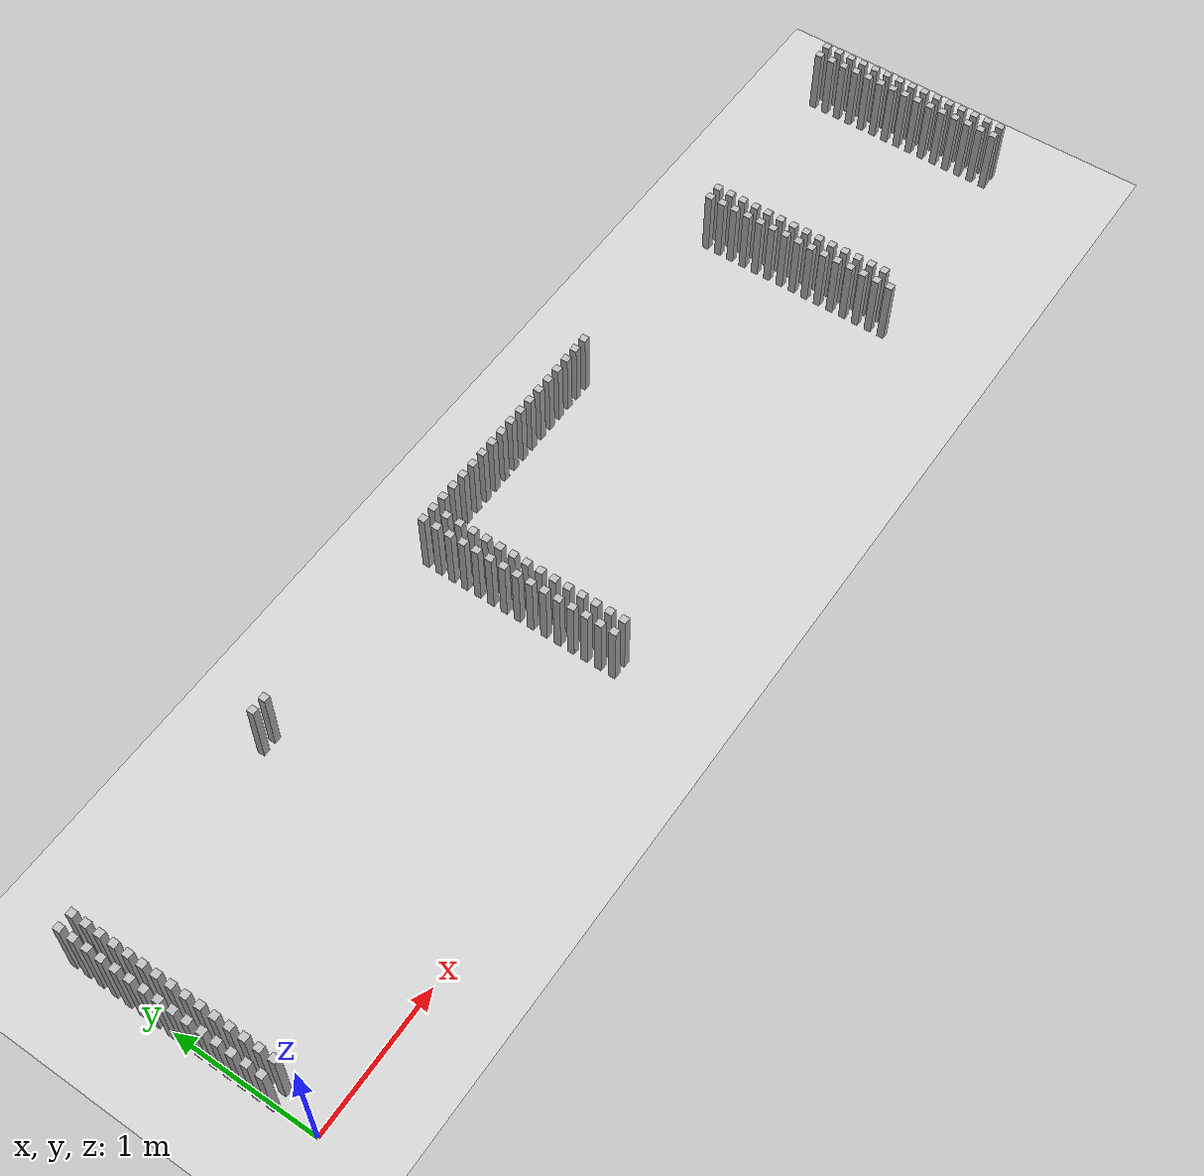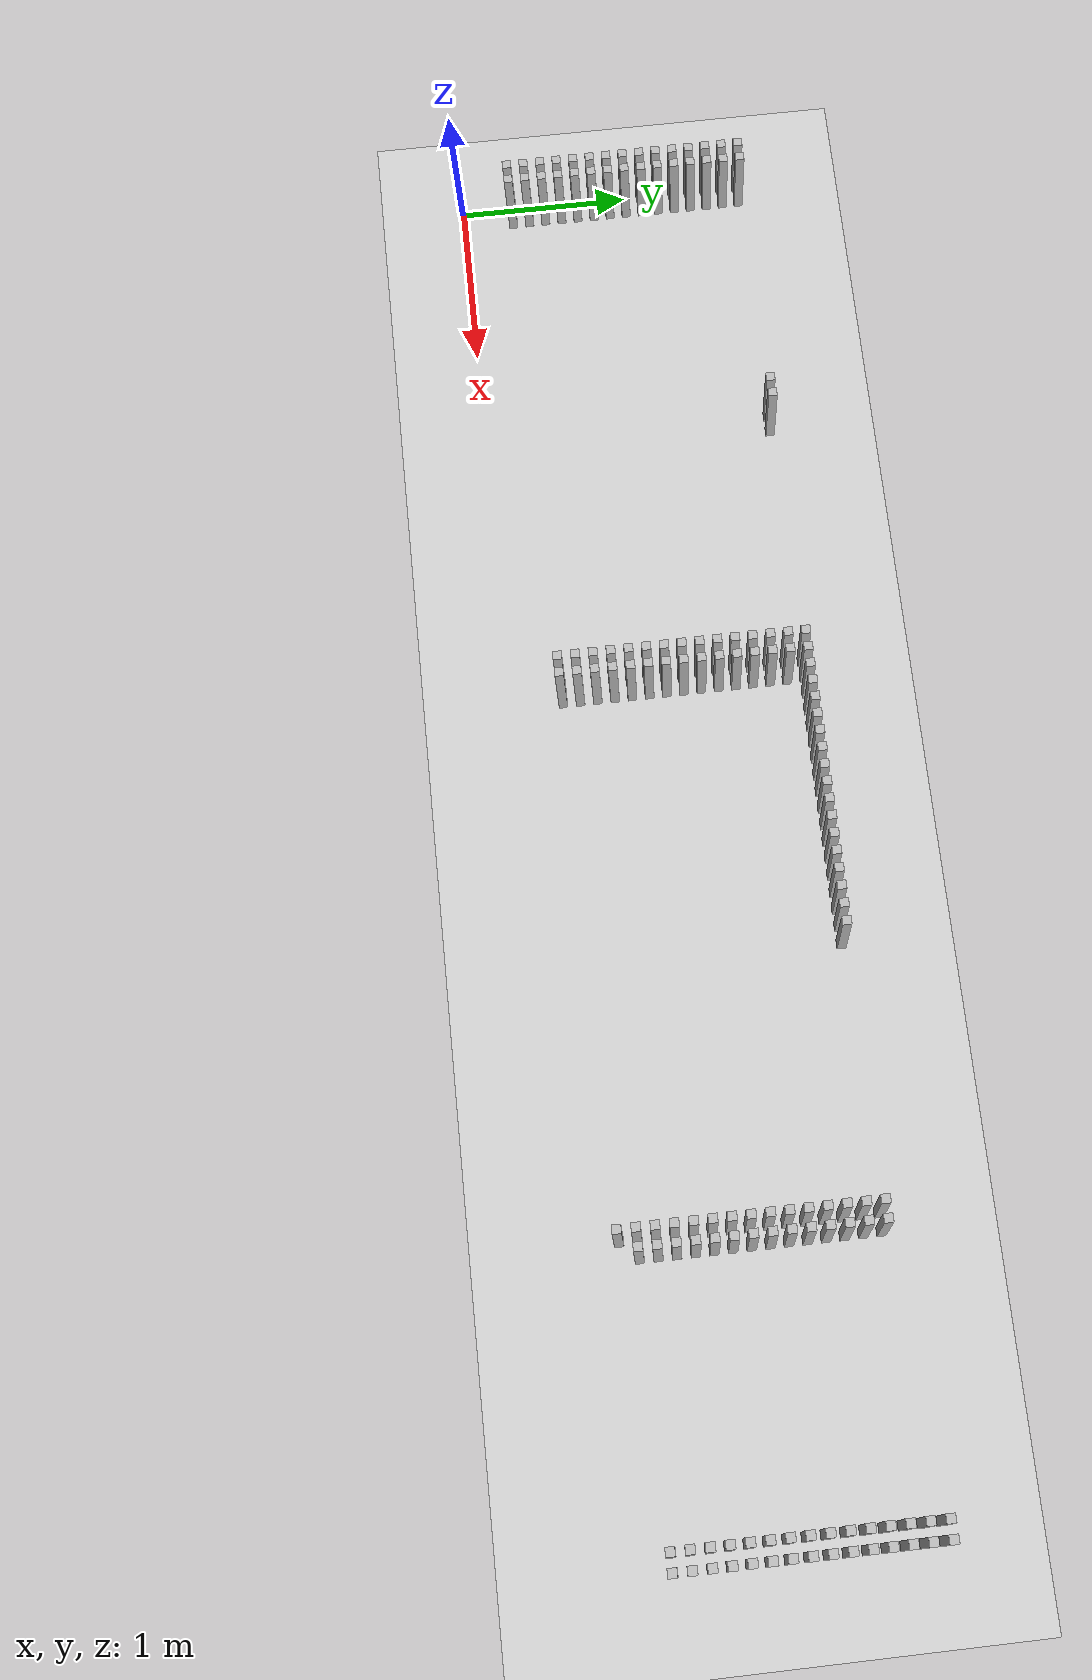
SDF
<sdf version="1.6">
 <world name="default_world">
  <include><uri>model://sun</uri></include>
  <include><uri>model://ground_plane</uri></include>
  <model name="wall_820">
   <static>true</static>
   <link name="link">
    <collision name="collision"><geometry><box><size>0.05 0.05 0.5</size></box></geometry></collision>
    <visual name="visual"><geometry><box><size>0.05 0.05 0.5</size></box></geometry></visual>
    <pose>8.0 1.8 0.25 0 0 0</pose>
   </link>
  </model>
  <model name="wall_821">
   <static>true</static>
   <link name="link">
    <collision name="collision"><geometry><box><size>0.05 0.05 0.5</size></box></geometry></collision>
    <visual name="visual"><geometry><box><size>0.05 0.05 0.5</size></box></geometry></visual>
    <pose>8.1 1.8 0.25 0 0 0</pose>
   </link>
  </model>
  <model name="wall_822">
   <static>true</static>
   <link name="link">
    <collision name="collision"><geometry><box><size>0.05 0.05 0.5</size></box></geometry></collision>
    <visual name="visual"><geometry><box><size>0.05 0.05 0.5</size></box></geometry></visual>
    <pose>0.0 1.7000000000000002 0.25 0 0 0</pose>
   </link>
  </model>
  <model name="wall_823">
   <static>true</static>
   <link name="link">
    <collision name="collision"><geometry><box><size>0.05 0.05 0.5</size></box></geometry></collision>
    <visual name="visual"><geometry><box><size>0.05 0.05 0.5</size></box></geometry></visual>
    <pose>0.1 1.7000000000000002 0.25 0 0 0</pose>
   </link>
  </model>
  <model name="wall_824">
   <static>true</static>
   <link name="link">
    <collision name="collision"><geometry><box><size>0.05 0.05 0.5</size></box></geometry></collision>
    <visual name="visual"><geometry><box><size>0.05 0.05 0.5</size></box></geometry></visual>
    <pose>1.6 1.7000000000000002 0.25 0 0 0</pose>
   </link>
  </model>
  <model name="wall_825">
   <static>true</static>
   <link name="link">
    <collision name="collision"><geometry><box><size>0.05 0.05 0.5</size></box></geometry></collision>
    <visual name="visual"><geometry><box><size>0.05 0.05 0.5</size></box></geometry></visual>
    <pose>1.7000000000000002 1.7000000000000002 0.25 0 0 0</pose>
   </link>
  </model>
  <model name="wall_826">
   <static>true</static>
   <link name="link">
    <collision name="collision"><geometry><box><size>0.05 0.05 0.5</size></box></geometry></collision>
    <visual name="visual"><geometry><box><size>0.05 0.05 0.5</size></box></geometry></visual>
    <pose>3.2 1.7000000000000002 0.25 0 0 0</pose>
   </link>
  </model>
  <model name="wall_827">
   <static>true</static>
   <link name="link">
    <collision name="collision"><geometry><box><size>0.05 0.05 0.5</size></box></geometry></collision>
    <visual name="visual"><geometry><box><size>0.05 0.05 0.5</size></box></geometry></visual>
    <pose>3.3000000000000003 1.7000000000000002 0.25 0 0 0</pose>
   </link>
  </model>
  <model name="wall_828">
   <static>true</static>
   <link name="link">
    <collision name="collision"><geometry><box><size>0.05 0.05 0.5</size></box></geometry></collision>
    <visual name="visual"><geometry><box><size>0.05 0.05 0.5</size></box></geometry></visual>
    <pose>3.4000000000000004 1.7000000000000002 0.25 0 0 0</pose>
   </link>
  </model>
  <model name="wall_829">
   <static>true</static>
   <link name="link">
    <collision name="collision"><geometry><box><size>0.05 0.05 0.5</size></box></geometry></collision>
    <visual name="visual"><geometry><box><size>0.05 0.05 0.5</size></box></geometry></visual>
    <pose>3.5 1.7000000000000002 0.25 0 0 0</pose>
   </link>
  </model>
  <model name="wall_830">
   <static>true</static>
   <link name="link">
    <collision name="collision"><geometry><box><size>0.05 0.05 0.5</size></box></geometry></collision>
    <visual name="visual"><geometry><box><size>0.05 0.05 0.5</size></box></geometry></visual>
    <pose>3.6 1.7000000000000002 0.25 0 0 0</pose>
   </link>
  </model>
  <model name="wall_831">
   <static>true</static>
   <link name="link">
    <collision name="collision"><geometry><box><size>0.05 0.05 0.5</size></box></geometry></collision>
    <visual name="visual"><geometry><box><size>0.05 0.05 0.5</size></box></geometry></visual>
    <pose>3.7 1.7000000000000002 0.25 0 0 0</pose>
   </link>
  </model>
  <model name="wall_832">
   <static>true</static>
   <link name="link">
    <collision name="collision"><geometry><box><size>0.05 0.05 0.5</size></box></geometry></collision>
    <visual name="visual"><geometry><box><size>0.05 0.05 0.5</size></box></geometry></visual>
    <pose>3.8000000000000003 1.7000000000000002 0.25 0 0 0</pose>
   </link>
  </model>
  <model name="wall_833">
   <static>true</static>
   <link name="link">
    <collision name="collision"><geometry><box><size>0.05 0.05 0.5</size></box></geometry></collision>
    <visual name="visual"><geometry><box><size>0.05 0.05 0.5</size></box></geometry></visual>
    <pose>3.9000000000000004 1.7000000000000002 0.25 0 0 0</pose>
   </link>
  </model>
  <model name="wall_834">
   <static>true</static>
   <link name="link">
    <collision name="collision"><geometry><box><size>0.05 0.05 0.5</size></box></geometry></collision>
    <visual name="visual"><geometry><box><size>0.05 0.05 0.5</size></box></geometry></visual>
    <pose>4.0 1.7000000000000002 0.25 0 0 0</pose>
   </link>
  </model>
  <model name="wall_835">
   <static>true</static>
   <link name="link">
    <collision name="collision"><geometry><box><size>0.05 0.05 0.5</size></box></geometry></collision>
    <visual name="visual"><geometry><box><size>0.05 0.05 0.5</size></box></geometry></visual>
    <pose>4.1000000000000005 1.7000000000000002 0.25 0 0 0</pose>
   </link>
  </model>
  <model name="wall_836">
   <static>true</static>
   <link name="link">
    <collision name="collision"><geometry><box><size>0.05 0.05 0.5</size></box></geometry></collision>
    <visual name="visual"><geometry><box><size>0.05 0.05 0.5</size></box></geometry></visual>
    <pose>4.2 1.7000000000000002 0.25 0 0 0</pose>
   </link>
  </model>
  <model name="wall_837">
   <static>true</static>
   <link name="link">
    <collision name="collision"><geometry><box><size>0.05 0.05 0.5</size></box></geometry></collision>
    <visual name="visual"><geometry><box><size>0.05 0.05 0.5</size></box></geometry></visual>
    <pose>4.3 1.7000000000000002 0.25 0 0 0</pose>
   </link>
  </model>
  <model name="wall_838">
   <static>true</static>
   <link name="link">
    <collision name="collision"><geometry><box><size>0.05 0.05 0.5</size></box></geometry></collision>
    <visual name="visual"><geometry><box><size>0.05 0.05 0.5</size></box></geometry></visual>
    <pose>4.4 1.7000000000000002 0.25 0 0 0</pose>
   </link>
  </model>
  <model name="wall_839">
   <static>true</static>
   <link name="link">
    <collision name="collision"><geometry><box><size>0.05 0.05 0.5</size></box></geometry></collision>
    <visual name="visual"><geometry><box><size>0.05 0.05 0.5</size></box></geometry></visual>
    <pose>4.5 1.7000000000000002 0.25 0 0 0</pose>
   </link>
  </model>
  <model name="wall_840">
   <static>true</static>
   <link name="link">
    <collision name="collision"><geometry><box><size>0.05 0.05 0.5</size></box></geometry></collision>
    <visual name="visual"><geometry><box><size>0.05 0.05 0.5</size></box></geometry></visual>
    <pose>4.6000000000000005 1.7000000000000002 0.25 0 0 0</pose>
   </link>
  </model>
  <model name="wall_841">
   <static>true</static>
   <link name="link">
    <collision name="collision"><geometry><box><size>0.05 0.05 0.5</size></box></geometry></collision>
    <visual name="visual"><geometry><box><size>0.05 0.05 0.5</size></box></geometry></visual>
    <pose>4.7 1.7000000000000002 0.25 0 0 0</pose>
   </link>
  </model>
  <model name="wall_842">
   <static>true</static>
   <link name="link">
    <collision name="collision"><geometry><box><size>0.05 0.05 0.5</size></box></geometry></collision>
    <visual name="visual"><geometry><box><size>0.05 0.05 0.5</size></box></geometry></visual>
    <pose>4.800000000000001 1.7000000000000002 0.25 0 0 0</pose>
   </link>
  </model>
  <model name="wall_843">
   <static>true</static>
   <link name="link">
    <collision name="collision"><geometry><box><size>0.05 0.05 0.5</size></box></geometry></collision>
    <visual name="visual"><geometry><box><size>0.05 0.05 0.5</size></box></geometry></visual>
    <pose>4.9 1.7000000000000002 0.25 0 0 0</pose>
   </link>
  </model>
  <model name="wall_844">
   <static>true</static>
   <link name="link">
    <collision name="collision"><geometry><box><size>0.05 0.05 0.5</size></box></geometry></collision>
    <visual name="visual"><geometry><box><size>0.05 0.05 0.5</size></box></geometry></visual>
    <pose>6.4 1.7000000000000002 0.25 0 0 0</pose>
   </link>
  </model>
  <model name="wall_845">
   <static>true</static>
   <link name="link">
    <collision name="collision"><geometry><box><size>0.05 0.05 0.5</size></box></geometry></collision>
    <visual name="visual"><geometry><box><size>0.05 0.05 0.5</size></box></geometry></visual>
    <pose>6.5 1.7000000000000002 0.25 0 0 0</pose>
   </link>
  </model>
  <model name="wall_846">
   <static>true</static>
   <link name="link">
    <collision name="collision"><geometry><box><size>0.05 0.05 0.5</size></box></geometry></collision>
    <visual name="visual"><geometry><box><size>0.05 0.05 0.5</size></box></geometry></visual>
    <pose>8.0 1.7000000000000002 0.25 0 0 0</pose>
   </link>
  </model>
  <model name="wall_847">
   <static>true</static>
   <link name="link">
    <collision name="collision"><geometry><box><size>0.05 0.05 0.5</size></box></geometry></collision>
    <visual name="visual"><geometry><box><size>0.05 0.05 0.5</size></box></geometry></visual>
    <pose>8.1 1.7000000000000002 0.25 0 0 0</pose>
   </link>
  </model>
  <model name="wall_848">
   <static>true</static>
   <link name="link">
    <collision name="collision"><geometry><box><size>0.05 0.05 0.5</size></box></geometry></collision>
    <visual name="visual"><geometry><box><size>0.05 0.05 0.5</size></box></geometry></visual>
    <pose>0.0 1.6 0.25 0 0 0</pose>
   </link>
  </model>
  <model name="wall_849">
   <static>true</static>
   <link name="link">
    <collision name="collision"><geometry><box><size>0.05 0.05 0.5</size></box></geometry></collision>
    <visual name="visual"><geometry><box><size>0.05 0.05 0.5</size></box></geometry></visual>
    <pose>0.1 1.6 0.25 0 0 0</pose>
   </link>
  </model>
  <model name="wall_850">
   <static>true</static>
   <link name="link">
    <collision name="collision"><geometry><box><size>0.05 0.05 0.5</size></box></geometry></collision>
    <visual name="visual"><geometry><box><size>0.05 0.05 0.5</size></box></geometry></visual>
    <pose>3.2 1.6 0.25 0 0 0</pose>
   </link>
  </model>
  <model name="wall_851">
   <static>true</static>
   <link name="link">
    <collision name="collision"><geometry><box><size>0.05 0.05 0.5</size></box></geometry></collision>
    <visual name="visual"><geometry><box><size>0.05 0.05 0.5</size></box></geometry></visual>
    <pose>3.3000000000000003 1.6 0.25 0 0 0</pose>
   </link>
  </model>
  <model name="wall_852">
   <static>true</static>
   <link name="link">
    <collision name="collision"><geometry><box><size>0.05 0.05 0.5</size></box></geometry></collision>
    <visual name="visual"><geometry><box><size>0.05 0.05 0.5</size></box></geometry></visual>
    <pose>6.4 1.6 0.25 0 0 0</pose>
   </link>
  </model>
  <model name="wall_853">
   <static>true</static>
   <link name="link">
    <collision name="collision"><geometry><box><size>0.05 0.05 0.5</size></box></geometry></collision>
    <visual name="visual"><geometry><box><size>0.05 0.05 0.5</size></box></geometry></visual>
    <pose>6.5 1.6 0.25 0 0 0</pose>
   </link>
  </model>
  <model name="wall_854">
   <static>true</static>
   <link name="link">
    <collision name="collision"><geometry><box><size>0.05 0.05 0.5</size></box></geometry></collision>
    <visual name="visual"><geometry><box><size>0.05 0.05 0.5</size></box></geometry></visual>
    <pose>8.0 1.6 0.25 0 0 0</pose>
   </link>
  </model>
  <model name="wall_855">
   <static>true</static>
   <link name="link">
    <collision name="collision"><geometry><box><size>0.05 0.05 0.5</size></box></geometry></collision>
    <visual name="visual"><geometry><box><size>0.05 0.05 0.5</size></box></geometry></visual>
    <pose>8.1 1.6 0.25 0 0 0</pose>
   </link>
  </model>
  <model name="wall_856">
   <static>true</static>
   <link name="link">
    <collision name="collision"><geometry><box><size>0.05 0.05 0.5</size></box></geometry></collision>
    <visual name="visual"><geometry><box><size>0.05 0.05 0.5</size></box></geometry></visual>
    <pose>0.0 1.5 0.25 0 0 0</pose>
   </link>
  </model>
  <model name="wall_857">
   <static>true</static>
   <link name="link">
    <collision name="collision"><geometry><box><size>0.05 0.05 0.5</size></box></geometry></collision>
    <visual name="visual"><geometry><box><size>0.05 0.05 0.5</size></box></geometry></visual>
    <pose>0.1 1.5 0.25 0 0 0</pose>
   </link>
  </model>
  <model name="wall_858">
   <static>true</static>
   <link name="link">
    <collision name="collision"><geometry><box><size>0.05 0.05 0.5</size></box></geometry></collision>
    <visual name="visual"><geometry><box><size>0.05 0.05 0.5</size></box></geometry></visual>
    <pose>3.2 1.5 0.25 0 0 0</pose>
   </link>
  </model>
  <model name="wall_859">
   <static>true</static>
   <link name="link">
    <collision name="collision"><geometry><box><size>0.05 0.05 0.5</size></box></geometry></collision>
    <visual name="visual"><geometry><box><size>0.05 0.05 0.5</size></box></geometry></visual>
    <pose>3.3000000000000003 1.5 0.25 0 0 0</pose>
   </link>
  </model>
  <model name="wall_860">
   <static>true</static>
   <link name="link">
    <collision name="collision"><geometry><box><size>0.05 0.05 0.5</size></box></geometry></collision>
    <visual name="visual"><geometry><box><size>0.05 0.05 0.5</size></box></geometry></visual>
    <pose>6.4 1.5 0.25 0 0 0</pose>
   </link>
  </model>
  <model name="wall_861">
   <static>true</static>
   <link name="link">
    <collision name="collision"><geometry><box><size>0.05 0.05 0.5</size></box></geometry></collision>
    <visual name="visual"><geometry><box><size>0.05 0.05 0.5</size></box></geometry></visual>
    <pose>6.5 1.5 0.25 0 0 0</pose>
   </link>
  </model>
  <model name="wall_862">
   <static>true</static>
   <link name="link">
    <collision name="collision"><geometry><box><size>0.05 0.05 0.5</size></box></geometry></collision>
    <visual name="visual"><geometry><box><size>0.05 0.05 0.5</size></box></geometry></visual>
    <pose>8.0 1.5 0.25 0 0 0</pose>
   </link>
  </model>
  <model name="wall_863">
   <static>true</static>
   <link name="link">
    <collision name="collision"><geometry><box><size>0.05 0.05 0.5</size></box></geometry></collision>
    <visual name="visual"><geometry><box><size>0.05 0.05 0.5</size></box></geometry></visual>
    <pose>8.1 1.5 0.25 0 0 0</pose>
   </link>
  </model>
  <model name="wall_864">
   <static>true</static>
   <link name="link">
    <collision name="collision"><geometry><box><size>0.05 0.05 0.5</size></box></geometry></collision>
    <visual name="visual"><geometry><box><size>0.05 0.05 0.5</size></box></geometry></visual>
    <pose>0.0 1.4000000000000001 0.25 0 0 0</pose>
   </link>
  </model>
  <model name="wall_865">
   <static>true</static>
   <link name="link">
    <collision name="collision"><geometry><box><size>0.05 0.05 0.5</size></box></geometry></collision>
    <visual name="visual"><geometry><box><size>0.05 0.05 0.5</size></box></geometry></visual>
    <pose>0.1 1.4000000000000001 0.25 0 0 0</pose>
   </link>
  </model>
  <model name="wall_866">
   <static>true</static>
   <link name="link">
    <collision name="collision"><geometry><box><size>0.05 0.05 0.5</size></box></geometry></collision>
    <visual name="visual"><geometry><box><size>0.05 0.05 0.5</size></box></geometry></visual>
    <pose>3.2 1.4000000000000001 0.25 0 0 0</pose>
   </link>
  </model>
  <model name="wall_867">
   <static>true</static>
   <link name="link">
    <collision name="collision"><geometry><box><size>0.05 0.05 0.5</size></box></geometry></collision>
    <visual name="visual"><geometry><box><size>0.05 0.05 0.5</size></box></geometry></visual>
    <pose>3.3000000000000003 1.4000000000000001 0.25 0 0 0</pose>
   </link>
  </model>
  <model name="wall_868">
   <static>true</static>
   <link name="link">
    <collision name="collision"><geometry><box><size>0.05 0.05 0.5</size></box></geometry></collision>
    <visual name="visual"><geometry><box><size>0.05 0.05 0.5</size></box></geometry></visual>
    <pose>6.4 1.4000000000000001 0.25 0 0 0</pose>
   </link>
  </model>
  <model name="wall_869">
   <static>true</static>
   <link name="link">
    <collision name="collision"><geometry><box><size>0.05 0.05 0.5</size></box></geometry></collision>
    <visual name="visual"><geometry><box><size>0.05 0.05 0.5</size></box></geometry></visual>
    <pose>6.5 1.4000000000000001 0.25 0 0 0</pose>
   </link>
  </model>
  <model name="wall_870">
   <static>true</static>
   <link name="link">
    <collision name="collision"><geometry><box><size>0.05 0.05 0.5</size></box></geometry></collision>
    <visual name="visual"><geometry><box><size>0.05 0.05 0.5</size></box></geometry></visual>
    <pose>8.0 1.4000000000000001 0.25 0 0 0</pose>
   </link>
  </model>
  <model name="wall_871">
   <static>true</static>
   <link name="link">
    <collision name="collision"><geometry><box><size>0.05 0.05 0.5</size></box></geometry></collision>
    <visual name="visual"><geometry><box><size>0.05 0.05 0.5</size></box></geometry></visual>
    <pose>8.1 1.4000000000000001 0.25 0 0 0</pose>
   </link>
  </model>
  <model name="wall_872">
   <static>true</static>
   <link name="link">
    <collision name="collision"><geometry><box><size>0.05 0.05 0.5</size></box></geometry></collision>
    <visual name="visual"><geometry><box><size>0.05 0.05 0.5</size></box></geometry></visual>
    <pose>0.0 1.3 0.25 0 0 0</pose>
   </link>
  </model>
  <model name="wall_873">
   <static>true</static>
   <link name="link">
    <collision name="collision"><geometry><box><size>0.05 0.05 0.5</size></box></geometry></collision>
    <visual name="visual"><geometry><box><size>0.05 0.05 0.5</size></box></geometry></visual>
    <pose>0.1 1.3 0.25 0 0 0</pose>
   </link>
  </model>
  <model name="wall_874">
   <static>true</static>
   <link name="link">
    <collision name="collision"><geometry><box><size>0.05 0.05 0.5</size></box></geometry></collision>
    <visual name="visual"><geometry><box><size>0.05 0.05 0.5</size></box></geometry></visual>
    <pose>3.2 1.3 0.25 0 0 0</pose>
   </link>
  </model>
  <model name="wall_875">
   <static>true</static>
   <link name="link">
    <collision name="collision"><geometry><box><size>0.05 0.05 0.5</size></box></geometry></collision>
    <visual name="visual"><geometry><box><size>0.05 0.05 0.5</size></box></geometry></visual>
    <pose>3.3000000000000003 1.3 0.25 0 0 0</pose>
   </link>
  </model>
  <model name="wall_876">
   <static>true</static>
   <link name="link">
    <collision name="collision"><geometry><box><size>0.05 0.05 0.5</size></box></geometry></collision>
    <visual name="visual"><geometry><box><size>0.05 0.05 0.5</size></box></geometry></visual>
    <pose>6.4 1.3 0.25 0 0 0</pose>
   </link>
  </model>
  <model name="wall_877">
   <static>true</static>
   <link name="link">
    <collision name="collision"><geometry><box><size>0.05 0.05 0.5</size></box></geometry></collision>
    <visual name="visual"><geometry><box><size>0.05 0.05 0.5</size></box></geometry></visual>
    <pose>6.5 1.3 0.25 0 0 0</pose>
   </link>
  </model>
  <model name="wall_878">
   <static>true</static>
   <link name="link">
    <collision name="collision"><geometry><box><size>0.05 0.05 0.5</size></box></geometry></collision>
    <visual name="visual"><geometry><box><size>0.05 0.05 0.5</size></box></geometry></visual>
    <pose>8.0 1.3 0.25 0 0 0</pose>
   </link>
  </model>
  <model name="wall_879">
   <static>true</static>
   <link name="link">
    <collision name="collision"><geometry><box><size>0.05 0.05 0.5</size></box></geometry></collision>
    <visual name="visual"><geometry><box><size>0.05 0.05 0.5</size></box></geometry></visual>
    <pose>8.1 1.3 0.25 0 0 0</pose>
   </link>
  </model>
  <model name="wall_880">
   <static>true</static>
   <link name="link">
    <collision name="collision"><geometry><box><size>0.05 0.05 0.5</size></box></geometry></collision>
    <visual name="visual"><geometry><box><size>0.05 0.05 0.5</size></box></geometry></visual>
    <pose>0.0 1.2000000000000002 0.25 0 0 0</pose>
   </link>
  </model>
  <model name="wall_881">
   <static>true</static>
   <link name="link">
    <collision name="collision"><geometry><box><size>0.05 0.05 0.5</size></box></geometry></collision>
    <visual name="visual"><geometry><box><size>0.05 0.05 0.5</size></box></geometry></visual>
    <pose>0.1 1.2000000000000002 0.25 0 0 0</pose>
   </link>
  </model>
  <model name="wall_882">
   <static>true</static>
   <link name="link">
    <collision name="collision"><geometry><box><size>0.05 0.05 0.5</size></box></geometry></collision>
    <visual name="visual"><geometry><box><size>0.05 0.05 0.5</size></box></geometry></visual>
    <pose>3.2 1.2000000000000002 0.25 0 0 0</pose>
   </link>
  </model>
  <model name="wall_883">
   <static>true</static>
   <link name="link">
    <collision name="collision"><geometry><box><size>0.05 0.05 0.5</size></box></geometry></collision>
    <visual name="visual"><geometry><box><size>0.05 0.05 0.5</size></box></geometry></visual>
    <pose>3.3000000000000003 1.2000000000000002 0.25 0 0 0</pose>
   </link>
  </model>
  <model name="wall_884">
   <static>true</static>
   <link name="link">
    <collision name="collision"><geometry><box><size>0.05 0.05 0.5</size></box></geometry></collision>
    <visual name="visual"><geometry><box><size>0.05 0.05 0.5</size></box></geometry></visual>
    <pose>6.4 1.2000000000000002 0.25 0 0 0</pose>
   </link>
  </model>
  <model name="wall_885">
   <static>true</static>
   <link name="link">
    <collision name="collision"><geometry><box><size>0.05 0.05 0.5</size></box></geometry></collision>
    <visual name="visual"><geometry><box><size>0.05 0.05 0.5</size></box></geometry></visual>
    <pose>6.5 1.2000000000000002 0.25 0 0 0</pose>
   </link>
  </model>
  <model name="wall_886">
   <static>true</static>
   <link name="link">
    <collision name="collision"><geometry><box><size>0.05 0.05 0.5</size></box></geometry></collision>
    <visual name="visual"><geometry><box><size>0.05 0.05 0.5</size></box></geometry></visual>
    <pose>8.0 1.2000000000000002 0.25 0 0 0</pose>
   </link>
  </model>
  <model name="wall_887">
   <static>true</static>
   <link name="link">
    <collision name="collision"><geometry><box><size>0.05 0.05 0.5</size></box></geometry></collision>
    <visual name="visual"><geometry><box><size>0.05 0.05 0.5</size></box></geometry></visual>
    <pose>8.1 1.2000000000000002 0.25 0 0 0</pose>
   </link>
  </model>
  <model name="wall_888">
   <static>true</static>
   <link name="link">
    <collision name="collision"><geometry><box><size>0.05 0.05 0.5</size></box></geometry></collision>
    <visual name="visual"><geometry><box><size>0.05 0.05 0.5</size></box></geometry></visual>
    <pose>0.0 1.1 0.25 0 0 0</pose>
   </link>
  </model>
  <model name="wall_889">
   <static>true</static>
   <link name="link">
    <collision name="collision"><geometry><box><size>0.05 0.05 0.5</size></box></geometry></collision>
    <visual name="visual"><geometry><box><size>0.05 0.05 0.5</size></box></geometry></visual>
    <pose>0.1 1.1 0.25 0 0 0</pose>
   </link>
  </model>
  <model name="wall_890">
   <static>true</static>
   <link name="link">
    <collision name="collision"><geometry><box><size>0.05 0.05 0.5</size></box></geometry></collision>
    <visual name="visual"><geometry><box><size>0.05 0.05 0.5</size></box></geometry></visual>
    <pose>3.2 1.1 0.25 0 0 0</pose>
   </link>
  </model>
  <model name="wall_891">
   <static>true</static>
   <link name="link">
    <collision name="collision"><geometry><box><size>0.05 0.05 0.5</size></box></geometry></collision>
    <visual name="visual"><geometry><box><size>0.05 0.05 0.5</size></box></geometry></visual>
    <pose>3.3000000000000003 1.1 0.25 0 0 0</pose>
   </link>
  </model>
  <model name="wall_892">
   <static>true</static>
   <link name="link">
    <collision name="collision"><geometry><box><size>0.05 0.05 0.5</size></box></geometry></collision>
    <visual name="visual"><geometry><box><size>0.05 0.05 0.5</size></box></geometry></visual>
    <pose>6.4 1.1 0.25 0 0 0</pose>
   </link>
  </model>
  <model name="wall_893">
   <static>true</static>
   <link name="link">
    <collision name="collision"><geometry><box><size>0.05 0.05 0.5</size></box></geometry></collision>
    <visual name="visual"><geometry><box><size>0.05 0.05 0.5</size></box></geometry></visual>
    <pose>6.5 1.1 0.25 0 0 0</pose>
   </link>
  </model>
  <model name="wall_894">
   <static>true</static>
   <link name="link">
    <collision name="collision"><geometry><box><size>0.05 0.05 0.5</size></box></geometry></collision>
    <visual name="visual"><geometry><box><size>0.05 0.05 0.5</size></box></geometry></visual>
    <pose>8.0 1.1 0.25 0 0 0</pose>
   </link>
  </model>
  <model name="wall_895">
   <static>true</static>
   <link name="link">
    <collision name="collision"><geometry><box><size>0.05 0.05 0.5</size></box></geometry></collision>
    <visual name="visual"><geometry><box><size>0.05 0.05 0.5</size></box></geometry></visual>
    <pose>8.1 1.1 0.25 0 0 0</pose>
   </link>
  </model>
  <model name="wall_896">
   <static>true</static>
   <link name="link">
    <collision name="collision"><geometry><box><size>0.05 0.05 0.5</size></box></geometry></collision>
    <visual name="visual"><geometry><box><size>0.05 0.05 0.5</size></box></geometry></visual>
    <pose>0.0 1.0 0.25 0 0 0</pose>
   </link>
  </model>
  <model name="wall_897">
   <static>true</static>
   <link name="link">
    <collision name="collision"><geometry><box><size>0.05 0.05 0.5</size></box></geometry></collision>
    <visual name="visual"><geometry><box><size>0.05 0.05 0.5</size></box></geometry></visual>
    <pose>0.1 1.0 0.25 0 0 0</pose>
   </link>
  </model>
  <model name="wall_898">
   <static>true</static>
   <link name="link">
    <collision name="collision"><geometry><box><size>0.05 0.05 0.5</size></box></geometry></collision>
    <visual name="visual"><geometry><box><size>0.05 0.05 0.5</size></box></geometry></visual>
    <pose>3.2 1.0 0.25 0 0 0</pose>
   </link>
  </model>
  <model name="wall_899">
   <static>true</static>
   <link name="link">
    <collision name="collision"><geometry><box><size>0.05 0.05 0.5</size></box></geometry></collision>
    <visual name="visual"><geometry><box><size>0.05 0.05 0.5</size></box></geometry></visual>
    <pose>3.3000000000000003 1.0 0.25 0 0 0</pose>
   </link>
  </model>
  <model name="wall_900">
   <static>true</static>
   <link name="link">
    <collision name="collision"><geometry><box><size>0.05 0.05 0.5</size></box></geometry></collision>
    <visual name="visual"><geometry><box><size>0.05 0.05 0.5</size></box></geometry></visual>
    <pose>6.4 1.0 0.25 0 0 0</pose>
   </link>
  </model>
  <model name="wall_901">
   <static>true</static>
   <link name="link">
    <collision name="collision"><geometry><box><size>0.05 0.05 0.5</size></box></geometry></collision>
    <visual name="visual"><geometry><box><size>0.05 0.05 0.5</size></box></geometry></visual>
    <pose>6.5 1.0 0.25 0 0 0</pose>
   </link>
  </model>
  <model name="wall_902">
   <static>true</static>
   <link name="link">
    <collision name="collision"><geometry><box><size>0.05 0.05 0.5</size></box></geometry></collision>
    <visual name="visual"><geometry><box><size>0.05 0.05 0.5</size></box></geometry></visual>
    <pose>8.0 1.0 0.25 0 0 0</pose>
   </link>
  </model>
  <model name="wall_903">
   <static>true</static>
   <link name="link">
    <collision name="collision"><geometry><box><size>0.05 0.05 0.5</size></box></geometry></collision>
    <visual name="visual"><geometry><box><size>0.05 0.05 0.5</size></box></geometry></visual>
    <pose>8.1 1.0 0.25 0 0 0</pose>
   </link>
  </model>
  <model name="wall_904">
   <static>true</static>
   <link name="link">
    <collision name="collision"><geometry><box><size>0.05 0.05 0.5</size></box></geometry></collision>
    <visual name="visual"><geometry><box><size>0.05 0.05 0.5</size></box></geometry></visual>
    <pose>0.0 0.9 0.25 0 0 0</pose>
   </link>
  </model>
  <model name="wall_905">
   <static>true</static>
   <link name="link">
    <collision name="collision"><geometry><box><size>0.05 0.05 0.5</size></box></geometry></collision>
    <visual name="visual"><geometry><box><size>0.05 0.05 0.5</size></box></geometry></visual>
    <pose>0.1 0.9 0.25 0 0 0</pose>
   </link>
  </model>
  <model name="wall_906">
   <static>true</static>
   <link name="link">
    <collision name="collision"><geometry><box><size>0.05 0.05 0.5</size></box></geometry></collision>
    <visual name="visual"><geometry><box><size>0.05 0.05 0.5</size></box></geometry></visual>
    <pose>3.2 0.9 0.25 0 0 0</pose>
   </link>
  </model>
  <model name="wall_907">
   <static>true</static>
   <link name="link">
    <collision name="collision"><geometry><box><size>0.05 0.05 0.5</size></box></geometry></collision>
    <visual name="visual"><geometry><box><size>0.05 0.05 0.5</size></box></geometry></visual>
    <pose>3.3000000000000003 0.9 0.25 0 0 0</pose>
   </link>
  </model>
  <model name="wall_908">
   <static>true</static>
   <link name="link">
    <collision name="collision"><geometry><box><size>0.05 0.05 0.5</size></box></geometry></collision>
    <visual name="visual"><geometry><box><size>0.05 0.05 0.5</size></box></geometry></visual>
    <pose>6.4 0.9 0.25 0 0 0</pose>
   </link>
  </model>
  <model name="wall_909">
   <static>true</static>
   <link name="link">
    <collision name="collision"><geometry><box><size>0.05 0.05 0.5</size></box></geometry></collision>
    <visual name="visual"><geometry><box><size>0.05 0.05 0.5</size></box></geometry></visual>
    <pose>6.5 0.9 0.25 0 0 0</pose>
   </link>
  </model>
  <model name="wall_910">
   <static>true</static>
   <link name="link">
    <collision name="collision"><geometry><box><size>0.05 0.05 0.5</size></box></geometry></collision>
    <visual name="visual"><geometry><box><size>0.05 0.05 0.5</size></box></geometry></visual>
    <pose>8.0 0.9 0.25 0 0 0</pose>
   </link>
  </model>
  <model name="wall_911">
   <static>true</static>
   <link name="link">
    <collision name="collision"><geometry><box><size>0.05 0.05 0.5</size></box></geometry></collision>
    <visual name="visual"><geometry><box><size>0.05 0.05 0.5</size></box></geometry></visual>
    <pose>8.1 0.9 0.25 0 0 0</pose>
   </link>
  </model>
  <model name="wall_912">
   <static>true</static>
   <link name="link">
    <collision name="collision"><geometry><box><size>0.05 0.05 0.5</size></box></geometry></collision>
    <visual name="visual"><geometry><box><size>0.05 0.05 0.5</size></box></geometry></visual>
    <pose>0.0 0.8 0.25 0 0 0</pose>
   </link>
  </model>
  <model name="wall_913">
   <static>true</static>
   <link name="link">
    <collision name="collision"><geometry><box><size>0.05 0.05 0.5</size></box></geometry></collision>
    <visual name="visual"><geometry><box><size>0.05 0.05 0.5</size></box></geometry></visual>
    <pose>0.1 0.8 0.25 0 0 0</pose>
   </link>
  </model>
  <model name="wall_914">
   <static>true</static>
   <link name="link">
    <collision name="collision"><geometry><box><size>0.05 0.05 0.5</size></box></geometry></collision>
    <visual name="visual"><geometry><box><size>0.05 0.05 0.5</size></box></geometry></visual>
    <pose>3.2 0.8 0.25 0 0 0</pose>
   </link>
  </model>
  <model name="wall_915">
   <static>true</static>
   <link name="link">
    <collision name="collision"><geometry><box><size>0.05 0.05 0.5</size></box></geometry></collision>
    <visual name="visual"><geometry><box><size>0.05 0.05 0.5</size></box></geometry></visual>
    <pose>3.3000000000000003 0.8 0.25 0 0 0</pose>
   </link>
  </model>
  <model name="wall_916">
   <static>true</static>
   <link name="link">
    <collision name="collision"><geometry><box><size>0.05 0.05 0.5</size></box></geometry></collision>
    <visual name="visual"><geometry><box><size>0.05 0.05 0.5</size></box></geometry></visual>
    <pose>6.4 0.8 0.25 0 0 0</pose>
   </link>
  </model>
  <model name="wall_917">
   <static>true</static>
   <link name="link">
    <collision name="collision"><geometry><box><size>0.05 0.05 0.5</size></box></geometry></collision>
    <visual name="visual"><geometry><box><size>0.05 0.05 0.5</size></box></geometry></visual>
    <pose>6.5 0.8 0.25 0 0 0</pose>
   </link>
  </model>
  <model name="wall_918">
   <static>true</static>
   <link name="link">
    <collision name="collision"><geometry><box><size>0.05 0.05 0.5</size></box></geometry></collision>
    <visual name="visual"><geometry><box><size>0.05 0.05 0.5</size></box></geometry></visual>
    <pose>8.0 0.8 0.25 0 0 0</pose>
   </link>
  </model>
  <model name="wall_919">
   <static>true</static>
   <link name="link">
    <collision name="collision"><geometry><box><size>0.05 0.05 0.5</size></box></geometry></collision>
    <visual name="visual"><geometry><box><size>0.05 0.05 0.5</size></box></geometry></visual>
    <pose>8.1 0.8 0.25 0 0 0</pose>
   </link>
  </model>
  <model name="wall_920">
   <static>true</static>
   <link name="link">
    <collision name="collision"><geometry><box><size>0.05 0.05 0.5</size></box></geometry></collision>
    <visual name="visual"><geometry><box><size>0.05 0.05 0.5</size></box></geometry></visual>
    <pose>0.0 0.7000000000000001 0.25 0 0 0</pose>
   </link>
  </model>
  <model name="wall_921">
   <static>true</static>
   <link name="link">
    <collision name="collision"><geometry><box><size>0.05 0.05 0.5</size></box></geometry></collision>
    <visual name="visual"><geometry><box><size>0.05 0.05 0.5</size></box></geometry></visual>
    <pose>0.1 0.7000000000000001 0.25 0 0 0</pose>
   </link>
  </model>
  <model name="wall_922">
   <static>true</static>
   <link name="link">
    <collision name="collision"><geometry><box><size>0.05 0.05 0.5</size></box></geometry></collision>
    <visual name="visual"><geometry><box><size>0.05 0.05 0.5</size></box></geometry></visual>
    <pose>3.2 0.7000000000000001 0.25 0 0 0</pose>
   </link>
  </model>
  <model name="wall_923">
   <static>true</static>
   <link name="link">
    <collision name="collision"><geometry><box><size>0.05 0.05 0.5</size></box></geometry></collision>
    <visual name="visual"><geometry><box><size>0.05 0.05 0.5</size></box></geometry></visual>
    <pose>3.3000000000000003 0.7000000000000001 0.25 0 0 0</pose>
   </link>
  </model>
  <model name="wall_924">
   <static>true</static>
   <link name="link">
    <collision name="collision"><geometry><box><size>0.05 0.05 0.5</size></box></geometry></collision>
    <visual name="visual"><geometry><box><size>0.05 0.05 0.5</size></box></geometry></visual>
    <pose>6.4 0.7000000000000001 0.25 0 0 0</pose>
   </link>
  </model>
  <model name="wall_925">
   <static>true</static>
   <link name="link">
    <collision name="collision"><geometry><box><size>0.05 0.05 0.5</size></box></geometry></collision>
    <visual name="visual"><geometry><box><size>0.05 0.05 0.5</size></box></geometry></visual>
    <pose>6.5 0.7000000000000001 0.25 0 0 0</pose>
   </link>
  </model>
  <model name="wall_926">
   <static>true</static>
   <link name="link">
    <collision name="collision"><geometry><box><size>0.05 0.05 0.5</size></box></geometry></collision>
    <visual name="visual"><geometry><box><size>0.05 0.05 0.5</size></box></geometry></visual>
    <pose>8.0 0.7000000000000001 0.25 0 0 0</pose>
   </link>
  </model>
  <model name="wall_927">
   <static>true</static>
   <link name="link">
    <collision name="collision"><geometry><box><size>0.05 0.05 0.5</size></box></geometry></collision>
    <visual name="visual"><geometry><box><size>0.05 0.05 0.5</size></box></geometry></visual>
    <pose>8.1 0.7000000000000001 0.25 0 0 0</pose>
   </link>
  </model>
  <model name="wall_928">
   <static>true</static>
   <link name="link">
    <collision name="collision"><geometry><box><size>0.05 0.05 0.5</size></box></geometry></collision>
    <visual name="visual"><geometry><box><size>0.05 0.05 0.5</size></box></geometry></visual>
    <pose>0.0 0.6000000000000001 0.25 0 0 0</pose>
   </link>
  </model>
  <model name="wall_929">
   <static>true</static>
   <link name="link">
    <collision name="collision"><geometry><box><size>0.05 0.05 0.5</size></box></geometry></collision>
    <visual name="visual"><geometry><box><size>0.05 0.05 0.5</size></box></geometry></visual>
    <pose>0.1 0.6000000000000001 0.25 0 0 0</pose>
   </link>
  </model>
  <model name="wall_930">
   <static>true</static>
   <link name="link">
    <collision name="collision"><geometry><box><size>0.05 0.05 0.5</size></box></geometry></collision>
    <visual name="visual"><geometry><box><size>0.05 0.05 0.5</size></box></geometry></visual>
    <pose>3.2 0.6000000000000001 0.25 0 0 0</pose>
   </link>
  </model>
  <model name="wall_931">
   <static>true</static>
   <link name="link">
    <collision name="collision"><geometry><box><size>0.05 0.05 0.5</size></box></geometry></collision>
    <visual name="visual"><geometry><box><size>0.05 0.05 0.5</size></box></geometry></visual>
    <pose>3.3000000000000003 0.6000000000000001 0.25 0 0 0</pose>
   </link>
  </model>
  <model name="wall_932">
   <static>true</static>
   <link name="link">
    <collision name="collision"><geometry><box><size>0.05 0.05 0.5</size></box></geometry></collision>
    <visual name="visual"><geometry><box><size>0.05 0.05 0.5</size></box></geometry></visual>
    <pose>6.4 0.6000000000000001 0.25 0 0 0</pose>
   </link>
  </model>
  <model name="wall_933">
   <static>true</static>
   <link name="link">
    <collision name="collision"><geometry><box><size>0.05 0.05 0.5</size></box></geometry></collision>
    <visual name="visual"><geometry><box><size>0.05 0.05 0.5</size></box></geometry></visual>
    <pose>6.5 0.6000000000000001 0.25 0 0 0</pose>
   </link>
  </model>
  <model name="wall_934">
   <static>true</static>
   <link name="link">
    <collision name="collision"><geometry><box><size>0.05 0.05 0.5</size></box></geometry></collision>
    <visual name="visual"><geometry><box><size>0.05 0.05 0.5</size></box></geometry></visual>
    <pose>8.0 0.6000000000000001 0.25 0 0 0</pose>
   </link>
  </model>
  <model name="wall_935">
   <static>true</static>
   <link name="link">
    <collision name="collision"><geometry><box><size>0.05 0.05 0.5</size></box></geometry></collision>
    <visual name="visual"><geometry><box><size>0.05 0.05 0.5</size></box></geometry></visual>
    <pose>8.1 0.6000000000000001 0.25 0 0 0</pose>
   </link>
  </model>
  <model name="wall_936">
   <static>true</static>
   <link name="link">
    <collision name="collision"><geometry><box><size>0.05 0.05 0.5</size></box></geometry></collision>
    <visual name="visual"><geometry><box><size>0.05 0.05 0.5</size></box></geometry></visual>
    <pose>0.0 0.5 0.25 0 0 0</pose>
   </link>
  </model>
  <model name="wall_937">
   <static>true</static>
   <link name="link">
    <collision name="collision"><geometry><box><size>0.05 0.05 0.5</size></box></geometry></collision>
    <visual name="visual"><geometry><box><size>0.05 0.05 0.5</size></box></geometry></visual>
    <pose>0.1 0.5 0.25 0 0 0</pose>
   </link>
  </model>
  <model name="wall_938">
   <static>true</static>
   <link name="link">
    <collision name="collision"><geometry><box><size>0.05 0.05 0.5</size></box></geometry></collision>
    <visual name="visual"><geometry><box><size>0.05 0.05 0.5</size></box></geometry></visual>
    <pose>3.2 0.5 0.25 0 0 0</pose>
   </link>
  </model>
  <model name="wall_939">
   <static>true</static>
   <link name="link">
    <collision name="collision"><geometry><box><size>0.05 0.05 0.5</size></box></geometry></collision>
    <visual name="visual"><geometry><box><size>0.05 0.05 0.5</size></box></geometry></visual>
    <pose>3.3000000000000003 0.5 0.25 0 0 0</pose>
   </link>
  </model>
  <model name="wall_940">
   <static>true</static>
   <link name="link">
    <collision name="collision"><geometry><box><size>0.05 0.05 0.5</size></box></geometry></collision>
    <visual name="visual"><geometry><box><size>0.05 0.05 0.5</size></box></geometry></visual>
    <pose>6.4 0.5 0.25 0 0 0</pose>
   </link>
  </model>
  <model name="wall_941">
   <static>true</static>
   <link name="link">
    <collision name="collision"><geometry><box><size>0.05 0.05 0.5</size></box></geometry></collision>
    <visual name="visual"><geometry><box><size>0.05 0.05 0.5</size></box></geometry></visual>
    <pose>6.5 0.5 0.25 0 0 0</pose>
   </link>
  </model>
  <model name="wall_942">
   <static>true</static>
   <link name="link">
    <collision name="collision"><geometry><box><size>0.05 0.05 0.5</size></box></geometry></collision>
    <visual name="visual"><geometry><box><size>0.05 0.05 0.5</size></box></geometry></visual>
    <pose>8.0 0.5 0.25 0 0 0</pose>
   </link>
  </model>
  <model name="wall_943">
   <static>true</static>
   <link name="link">
    <collision name="collision"><geometry><box><size>0.05 0.05 0.5</size></box></geometry></collision>
    <visual name="visual"><geometry><box><size>0.05 0.05 0.5</size></box></geometry></visual>
    <pose>8.1 0.5 0.25 0 0 0</pose>
   </link>
  </model>
  <model name="wall_944">
   <static>true</static>
   <link name="link">
    <collision name="collision"><geometry><box><size>0.05 0.05 0.5</size></box></geometry></collision>
    <visual name="visual"><geometry><box><size>0.05 0.05 0.5</size></box></geometry></visual>
    <pose>0.0 0.4 0.25 0 0 0</pose>
   </link>
  </model>
  <model name="wall_945">
   <static>true</static>
   <link name="link">
    <collision name="collision"><geometry><box><size>0.05 0.05 0.5</size></box></geometry></collision>
    <visual name="visual"><geometry><box><size>0.05 0.05 0.5</size></box></geometry></visual>
    <pose>0.1 0.4 0.25 0 0 0</pose>
   </link>
  </model>
  <model name="wall_946">
   <static>true</static>
   <link name="link">
    <collision name="collision"><geometry><box><size>0.05 0.05 0.5</size></box></geometry></collision>
    <visual name="visual"><geometry><box><size>0.05 0.05 0.5</size></box></geometry></visual>
    <pose>3.2 0.4 0.25 0 0 0</pose>
   </link>
  </model>
  <model name="wall_947">
   <static>true</static>
   <link name="link">
    <collision name="collision"><geometry><box><size>0.05 0.05 0.5</size></box></geometry></collision>
    <visual name="visual"><geometry><box><size>0.05 0.05 0.5</size></box></geometry></visual>
    <pose>3.3000000000000003 0.4 0.25 0 0 0</pose>
   </link>
  </model>
  <model name="wall_948">
   <static>true</static>
   <link name="link">
    <collision name="collision"><geometry><box><size>0.05 0.05 0.5</size></box></geometry></collision>
    <visual name="visual"><geometry><box><size>0.05 0.05 0.5</size></box></geometry></visual>
    <pose>6.4 0.4 0.25 0 0 0</pose>
   </link>
  </model>
  <model name="wall_949">
   <static>true</static>
   <link name="link">
    <collision name="collision"><geometry><box><size>0.05 0.05 0.5</size></box></geometry></collision>
    <visual name="visual"><geometry><box><size>0.05 0.05 0.5</size></box></geometry></visual>
    <pose>6.5 0.4 0.25 0 0 0</pose>
   </link>
  </model>
  <model name="wall_950">
   <static>true</static>
   <link name="link">
    <collision name="collision"><geometry><box><size>0.05 0.05 0.5</size></box></geometry></collision>
    <visual name="visual"><geometry><box><size>0.05 0.05 0.5</size></box></geometry></visual>
    <pose>8.0 0.4 0.25 0 0 0</pose>
   </link>
  </model>
  <model name="wall_951">
   <static>true</static>
   <link name="link">
    <collision name="collision"><geometry><box><size>0.05 0.05 0.5</size></box></geometry></collision>
    <visual name="visual"><geometry><box><size>0.05 0.05 0.5</size></box></geometry></visual>
    <pose>8.1 0.4 0.25 0 0 0</pose>
   </link>
  </model>
  <model name="wall_952">
   <static>true</static>
   <link name="link">
    <collision name="collision"><geometry><box><size>0.05 0.05 0.5</size></box></geometry></collision>
    <visual name="visual"><geometry><box><size>0.05 0.05 0.5</size></box></geometry></visual>
    <pose>0.0 0.30000000000000004 0.25 0 0 0</pose>
   </link>
  </model>
  <model name="wall_953">
   <static>true</static>
   <link name="link">
    <collision name="collision"><geometry><box><size>0.05 0.05 0.5</size></box></geometry></collision>
    <visual name="visual"><geometry><box><size>0.05 0.05 0.5</size></box></geometry></visual>
    <pose>0.1 0.30000000000000004 0.25 0 0 0</pose>
   </link>
  </model>
  <model name="wall_954">
   <static>true</static>
   <link name="link">
    <collision name="collision"><geometry><box><size>0.05 0.05 0.5</size></box></geometry></collision>
    <visual name="visual"><geometry><box><size>0.05 0.05 0.5</size></box></geometry></visual>
    <pose>3.2 0.30000000000000004 0.25 0 0 0</pose>
   </link>
  </model>
  <model name="wall_955">
   <static>true</static>
   <link name="link">
    <collision name="collision"><geometry><box><size>0.05 0.05 0.5</size></box></geometry></collision>
    <visual name="visual"><geometry><box><size>0.05 0.05 0.5</size></box></geometry></visual>
    <pose>3.3000000000000003 0.30000000000000004 0.25 0 0 0</pose>
   </link>
  </model>
  <model name="wall_956">
   <static>true</static>
   <link name="link">
    <collision name="collision"><geometry><box><size>0.05 0.05 0.5</size></box></geometry></collision>
    <visual name="visual"><geometry><box><size>0.05 0.05 0.5</size></box></geometry></visual>
    <pose>6.4 0.30000000000000004 0.25 0 0 0</pose>
   </link>
  </model>
 </world>
</sdf>
